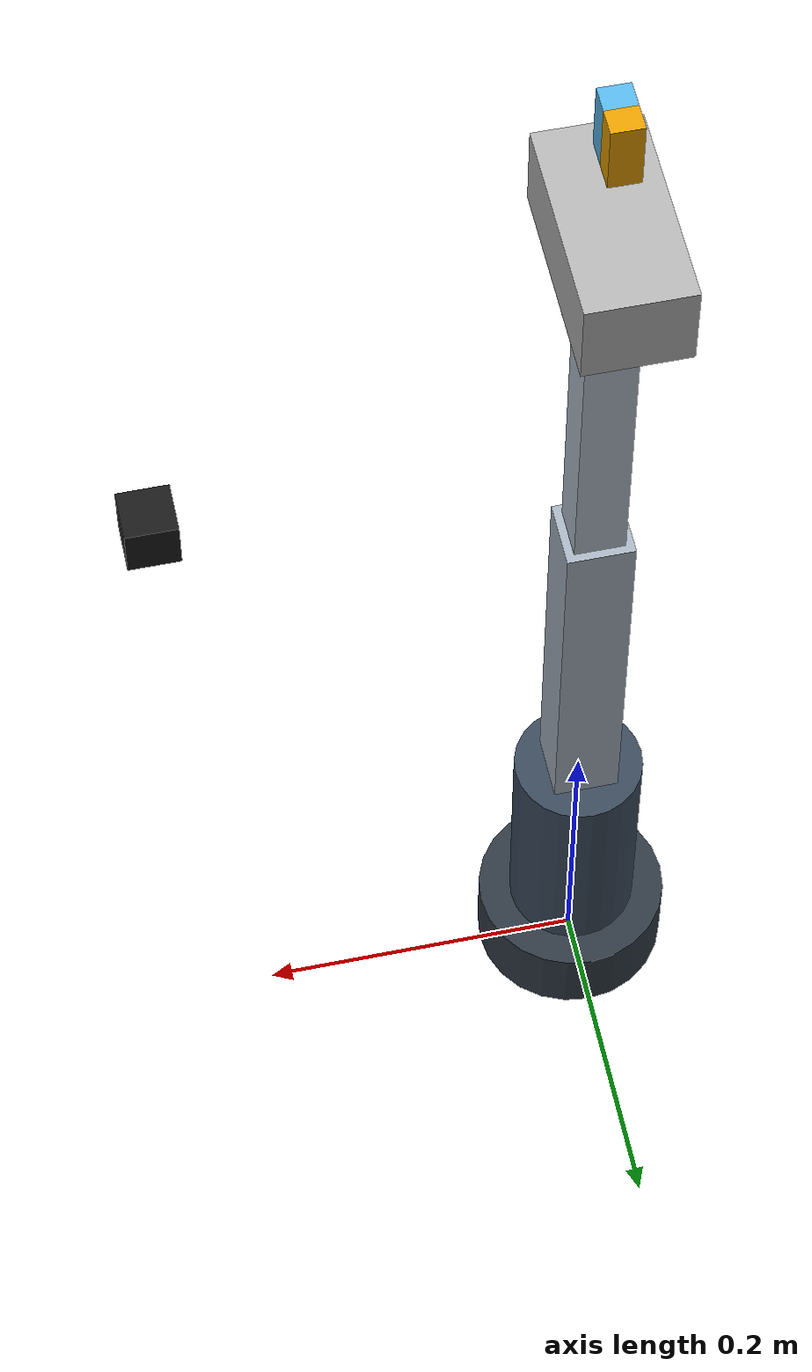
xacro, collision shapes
<?xml version="1.0"?>
<robot xmlns:xacro="http://www.ros.org/wiki/xacro" name="robot_arm">

  <xacro:arg name="dof" default="4"/>
  <xacro:arg name="use_mesh" default="true"/>

  <!-- ===================== PROPERTIES ===================== -->
  <!-- Base -->
  <xacro:property name="base_radius" value="0.06"/>
  <xacro:property name="base_height" value="0.05"/>
  <xacro:property name="base_mass" value="2.0"/>

  <!-- Link1 - Turret -->
  <xacro:property name="link1_radius" value="0.04"/>
  <xacro:property name="link1_height" value="0.15"/>
  <xacro:property name="link1_mass" value="1.0"/>

  <!-- Link2 - Upper arm -->
  <xacro:property name="link2_width" value="0.04"/>
  <xacro:property name="link2_depth" value="0.04"/>
  <xacro:property name="link2_length" value="0.25"/>
  <xacro:property name="link2_mass" value="0.8"/>

  <!-- Link3 - Forearm -->
  <xacro:property name="link3_width" value="0.03"/>
  <xacro:property name="link3_depth" value="0.03"/>
  <xacro:property name="link3_length" value="0.20"/>
  <xacro:property name="link3_mass" value="0.5"/>

  <!-- Link4 - Wrist (4th DOF: wrist pitch around Y) -->
  <xacro:property name="link4_radius" value="0.025"/>
  <xacro:property name="link4_height" value="0.03"/>
  <xacro:property name="link4_mass" value="0.15"/>

  <!-- Gripper -->
  <xacro:property name="gripper_base_x" value="0.06"/>
  <xacro:property name="gripper_base_y" value="0.04"/>
  <xacro:property name="gripper_base_z" value="0.01"/>
  <xacro:property name="gripper_base_mass" value="0.1"/>

  <xacro:property name="finger_x" value="0.03"/>
  <xacro:property name="finger_y" value="0.01"/>
  <xacro:property name="finger_z" value="0.04"/>
  <xacro:property name="finger_mass" value="0.05"/>

  <!-- Camera -->
  <xacro:property name="camera_size" value="0.03"/>
  <xacro:property name="camera_mass" value="0.05"/>

  <!-- ===================== INERTIA MACROS ===================== -->
  <xacro:macro name="cylinder_inertia" params="m r h">
    <inertial>
      <mass value="${m}"/>
      <inertia ixx="${(1.0/12.0)*m*(3*r*r+h*h)}" ixy="0" ixz="0"
               iyy="${(1.0/12.0)*m*(3*r*r+h*h)}" iyz="0"
               izz="${0.5*m*r*r}"/>
    </inertial>
  </xacro:macro>

  <xacro:macro name="box_inertia" params="m x y z">
    <inertial>
      <mass value="${m}"/>
      <inertia ixx="${(1.0/12.0)*m*(y*y+z*z)}" ixy="0" ixz="0"
               iyy="${(1.0/12.0)*m*(x*x+z*z)}" iyz="0"
               izz="${(1.0/12.0)*m*(x*x+y*y)}"/>
    </inertial>
  </xacro:macro>

  <!-- ===================== LINKS & JOINTS ===================== -->

  <!-- World link (for fixed base) -->
  <link name="world"/>

  <!-- Base Link -->
  <joint name="world_to_base" type="fixed">
    <parent link="world"/>
    <child link="base_link"/>
    <origin xyz="0 0 ${base_height/2}" rpy="0 0 0"/>
  </joint>

  <link name="base_link">
    <xacro:cylinder_inertia m="${base_mass}" r="${base_radius}" h="${base_height}"/>
    <visual>
      <xacro:if value="$(arg use_mesh)">
        <origin xyz="0 0 0" rpy="0 0 0"/>
        <geometry>
          <mesh filename="package://robot_arm/meshes/arm/base_link.stl"/>
        </geometry>
      </xacro:if>
      <xacro:unless value="$(arg use_mesh)">
        <geometry>
          <cylinder radius="${base_radius}" length="${base_height}"/>
        </geometry>
      </xacro:unless>
      <material name="dark_slate">
        <color rgba="0.18 0.22 0.26 1.0"/>
      </material>
    </visual>
    <collision>
      <geometry>
        <cylinder radius="${base_radius}" length="${base_height}"/>
      </geometry>
    </collision>
  </link>

  <!-- Link1 - Turret (rotates around Z) -->
  <joint name="joint1" type="revolute">
    <parent link="base_link"/>
    <child link="link1"/>
    <origin xyz="0 0 ${base_height/2}" rpy="0 0 0"/>
    <axis xyz="0 0 1"/>
    <limit lower="${-pi}" upper="${pi}" velocity="2.0" effort="50.0"/>
    <dynamics damping="0.5" friction="0.1"/>
  </joint>

  <link name="link1">
    <xacro:cylinder_inertia m="${link1_mass}" r="${link1_radius}" h="${link1_height}"/>
    <visual>
      <xacro:if value="$(arg use_mesh)">
        <origin xyz="0 0 0" rpy="0 0 0"/>
        <geometry>
          <mesh filename="package://robot_arm/meshes/arm/link1.stl"/>
        </geometry>
      </xacro:if>
      <xacro:unless value="$(arg use_mesh)">
        <origin xyz="0 0 ${link1_height/2}" rpy="0 0 0"/>
        <geometry>
          <cylinder radius="${link1_radius}" length="${link1_height}"/>
        </geometry>
      </xacro:unless>
      <material name="slate_grey">
        <color rgba="0.22 0.28 0.35 1.0"/>
      </material>
    </visual>
    <collision>
      <origin xyz="0 0 ${link1_height/2}" rpy="0 0 0"/>
      <geometry>
        <cylinder radius="${link1_radius}" length="${link1_height}"/>
      </geometry>
    </collision>
  </link>

  <!-- Link2 - Upper arm (rotates around Y) -->
  <joint name="joint2" type="revolute">
    <parent link="link1"/>
    <child link="link2"/>
    <origin xyz="0 0 ${link1_height}" rpy="0 0 0"/>
    <axis xyz="0 1 0"/>
    <limit lower="-2.5" upper="2.5" velocity="2.0" effort="50.0"/>
    <dynamics damping="0.5" friction="0.1"/>
  </joint>

  <link name="link2">
    <xacro:box_inertia m="${link2_mass}" x="${link2_width}" y="${link2_depth}" z="${link2_length}"/>
    <visual>
      <xacro:if value="$(arg use_mesh)">
        <origin xyz="0 0 0" rpy="0 0 0"/>
        <geometry>
          <mesh filename="package://robot_arm/meshes/arm/link2.stl"/>
        </geometry>
      </xacro:if>
      <xacro:unless value="$(arg use_mesh)">
        <origin xyz="0 0 ${link2_length/2}" rpy="0 0 0"/>
        <geometry>
          <box size="${link2_width} ${link2_depth} ${link2_length}"/>
        </geometry>
      </xacro:unless>
      <material name="metallic_silver">
        <color rgba="0.65 0.70 0.75 1.0"/>
      </material>
    </visual>
    <collision>
      <origin xyz="0 0 ${link2_length/2}" rpy="0 0 0"/>
      <geometry>
        <box size="${link2_width} ${link2_depth} ${link2_length}"/>
      </geometry>
    </collision>
  </link>

  <!-- Link3 - Forearm (rotates around Y) -->
  <joint name="joint3" type="revolute">
    <parent link="link2"/>
    <child link="link3"/>
    <origin xyz="0 0 ${link2_length}" rpy="0 0 0"/>
    <axis xyz="0 1 0"/>
    <limit lower="-2.5" upper="2.5" velocity="2.0" effort="50.0"/>
    <dynamics damping="0.3" friction="0.1"/>
  </joint>

  <link name="link3">
    <xacro:box_inertia m="${link3_mass}" x="${link3_width}" y="${link3_depth}" z="${link3_length}"/>
    <visual>
      <xacro:if value="$(arg use_mesh)">
        <origin xyz="0 0 0" rpy="0 0 0"/>
        <geometry>
          <mesh filename="package://robot_arm/meshes/arm/link3.stl"/>
        </geometry>
      </xacro:if>
      <xacro:unless value="$(arg use_mesh)">
        <origin xyz="0 0 ${link3_length/2}" rpy="0 0 0"/>
        <geometry>
          <box size="${link3_width} ${link3_depth} ${link3_length}"/>
        </geometry>
      </xacro:unless>
      <material name="aluminum">
        <color rgba="0.70 0.75 0.80 1.0"/>
      </material>
    </visual>
    <collision>
      <origin xyz="0 0 ${link3_length/2}" rpy="0 0 0"/>
      <geometry>
        <box size="${link3_width} ${link3_depth} ${link3_length}"/>
      </geometry>
    </collision>
  </link>

  <!-- Link4 - Wrist (4th DOF: rotates around Y for wrist pitch) -->
  <joint name="joint4" type="revolute">
    <parent link="link3"/>
    <child link="link4"/>
    <origin xyz="0 0 ${link3_length}" rpy="0 0 0"/>
    <axis xyz="0 1 0"/>
    <limit lower="-2.2" upper="2.2" velocity="3.0" effort="20.0"/>
    <dynamics damping="0.2" friction="0.05"/>
  </joint>

  <link name="link4">
    <xacro:cylinder_inertia m="${link4_mass}" r="${link4_radius}" h="${link4_height}"/>
    <visual>
      <xacro:if value="$(arg use_mesh)">
        <origin xyz="0 0 0" rpy="0 0 0"/>
        <geometry>
          <mesh filename="package://robot_arm/meshes/arm/link4.stl"/>
        </geometry>
      </xacro:if>
      <xacro:unless value="$(arg use_mesh)">
        <origin xyz="0 0 ${link4_height/2}" rpy="0 0 0"/>
        <geometry>
          <cylinder radius="${link4_radius}" length="${link4_height}"/>
        </geometry>
      </xacro:unless>
      <material name="wrist_dark">
        <color rgba="0.25 0.30 0.35 1.0"/>
      </material>
    </visual>
    <collision>
      <origin xyz="0 0 ${link4_height/2}" rpy="0 0 0"/>
      <geometry>
        <cylinder radius="${link4_radius}" length="${link4_height}"/>
      </geometry>
    </collision>
  </link>

  <!-- End Effector (reference frame at the tip of link4) -->
  <joint name="end_effector_joint" type="fixed">
    <parent link="link4"/>
    <child link="end_effector_link"/>
    <origin xyz="0 0 ${link4_height}" rpy="0 0 0"/>
  </joint>

  <link name="end_effector_link"/>

  <!-- ===================== GRIPPER (Franka Hand Modern Parallel-Jaw) ===================== -->

  <!-- Gripper base (sits right at the end of the arm) -->
  <joint name="gripper_base_joint" type="fixed">
    <parent link="end_effector_link"/>
    <child link="gripper_base_link"/>
    <origin xyz="0 0 0" rpy="0 0 0"/>
  </joint>

  <link name="gripper_base_link">
    <xacro:box_inertia m="${gripper_base_mass}" x="0.06" y="0.12" z="0.06"/>
    <visual>
      <xacro:if value="$(arg use_mesh)">
        <origin xyz="0 0 0" rpy="0 0 0"/>
        <geometry>
          <mesh filename="package://robot_arm/meshes/gripper/hand.dae"/>
        </geometry>
      </xacro:if>
      <xacro:unless value="$(arg use_mesh)">
        <origin xyz="0 0 ${gripper_base_z/2}" rpy="0 0 0"/>
        <geometry>
          <box size="${gripper_base_x} ${gripper_base_y} ${gripper_base_z}"/>
        </geometry>
        <material name="grey">
          <color rgba="0.5 0.5 0.5 1.0"/>
        </material>
      </xacro:unless>
    </visual>
    <collision>
      <origin xyz="0 0 0.02" rpy="0 0 0"/>
      <geometry>
        <box size="0.06 0.12 0.05"/>
      </geometry>
    </collision>
  </link>

  <!-- Left finger (prismatic along Y, opens outward +Y, extends in +Z) -->
  <joint name="gripper_left_joint" type="prismatic">
    <parent link="gripper_base_link"/>
    <child link="finger_left_link"/>
    <origin xyz="0 0 0.0584" rpy="0 0 0"/>
    <axis xyz="0 1 0"/>
    <limit lower="0.0" upper="0.040" velocity="0.5" effort="20.0"/>
    <dynamics damping="0.1"/>
  </joint>

  <link name="finger_left_link">
    <xacro:box_inertia m="${finger_mass}" x="0.02" y="0.015" z="0.04"/>
    <visual>
      <xacro:if value="$(arg use_mesh)">
        <origin xyz="0 0 0" rpy="0 0 0"/>
        <geometry>
          <mesh filename="package://robot_arm/meshes/gripper/finger.dae"/>
        </geometry>
      </xacro:if>
      <xacro:unless value="$(arg use_mesh)">
        <origin xyz="0 0 ${finger_z/2}" rpy="0 0 0"/>
        <geometry>
          <box size="${finger_x} ${finger_y} ${finger_z}"/>
        </geometry>
        <material name="light_grey">
          <color rgba="0.7 0.7 0.7 1.0"/>
        </material>
      </xacro:unless>
    </visual>
    <collision>
      <origin xyz="0 0.0075 0.045" rpy="0 0 0"/>
      <geometry>
        <box size="0.018 0.015 0.04"/>
      </geometry>
    </collision>
  </link>

  <!-- Right finger (mimic of left, moves in -Y, extends in +Z) -->
  <joint name="gripper_right_joint" type="prismatic">
    <parent link="gripper_base_link"/>
    <child link="finger_right_link"/>
    <origin xyz="0 0 0.0584" rpy="0 0 ${pi}"/>
    <axis xyz="0 1 0"/>
    <limit lower="0.0" upper="0.040" velocity="0.5" effort="20.0"/>
    <mimic joint="gripper_left_joint" multiplier="1" offset="0"/>
    <dynamics damping="0.1"/>
  </joint>

  <link name="finger_right_link">
    <xacro:box_inertia m="${finger_mass}" x="0.02" y="0.015" z="0.04"/>
    <visual>
      <xacro:if value="$(arg use_mesh)">
        <origin xyz="0 0 0" rpy="0 0 0"/>
        <geometry>
          <mesh filename="package://robot_arm/meshes/gripper/finger.dae"/>
        </geometry>
      </xacro:if>
      <xacro:unless value="$(arg use_mesh)">
        <origin xyz="0 0 ${finger_z/2}" rpy="0 0 0"/>
        <geometry>
          <box size="${finger_x} ${finger_y} ${finger_z}"/>
        </geometry>
        <material name="light_grey">
          <color rgba="0.7 0.7 0.7 1.0"/>
        </material>
      </xacro:unless>
    </visual>
    <collision>
      <origin xyz="0 0.0075 0.045" rpy="0 0 0"/>
      <geometry>
        <box size="0.018 0.015 0.04"/>
      </geometry>
    </collision>
  </link>

  <!-- Grasp Center (virtual reference frame located at the center of the finger pads) -->
  <joint name="grasp_joint" type="fixed">
    <parent link="end_effector_link"/>
    <child link="grasp_link"/>
    <origin xyz="0 0 0.1034" rpy="0 0 0"/>
  </joint>
  <link name="grasp_link"/>

  <!-- ===================== CAMERA ===================== -->

  <!-- Camera mount (fixed overhead, looking straight down) -->
  <joint name="camera_joint" type="fixed">
    <parent link="base_link"/>
    <child link="camera_link"/>
    <origin xyz="0.25 0.0 0.50" rpy="0 ${pi/2} 0"/>
  </joint>

  <link name="camera_link">
    <xacro:box_inertia m="${camera_mass}" x="${camera_size}" y="${camera_size}" z="${camera_size}"/>
    <visual>
      <geometry>
        <box size="${camera_size} ${camera_size} ${camera_size}"/>
      </geometry>
      <material name="black">
        <color rgba="0.1 0.1 0.1 1.0"/>
      </material>
    </visual>
    <collision>
      <geometry>
        <box size="${camera_size} ${camera_size} ${camera_size}"/>
      </geometry>
    </collision>
  </link>

  <!-- Camera optical frame (Z forward, X right, Y down) -->
  <joint name="camera_optical_joint" type="fixed">
    <parent link="camera_link"/>
    <child link="camera_optical_link"/>
    <origin xyz="0 0 0" rpy="${-pi/2} 0 ${-pi/2}"/>
  </joint>

  <link name="camera_optical_link"/>

  <!-- ===================== INCLUDE ros2_control + Gazebo ===================== -->
  <xacro:include filename="$(find robot_arm)/urdf/robot_arm_ros2_control.xacro"/>
  <xacro:include filename="$(find robot_arm)/urdf/robot_arm_gazebo.xacro"/>

</robot>
